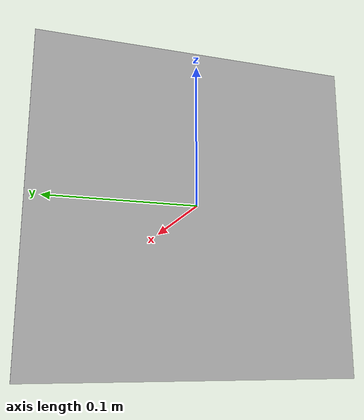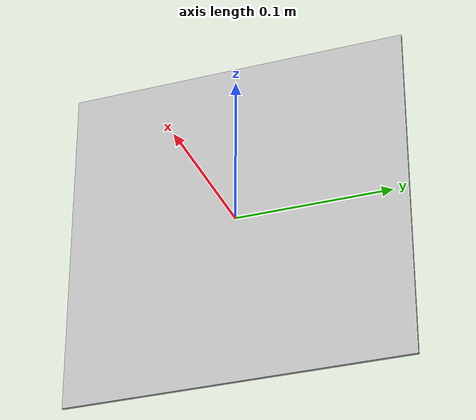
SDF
<?xml version="1.0"?>
<sdf version="1.7">
  <model name="aruco_marker_30">
    <static>true</static>
    <link name="marker_link">
      <pose>0 0 0 0 0 0</pose>
      <visual name="marker_visual">
        <pose>0 0 0 0 0 0</pose>
        <geometry>
          <box><size>0.002 0.22 0.22</size></box>
        </geometry>
        <material>
          <script>
            <uri>model://aruco_marker_30/materials/scripts/</uri>
            <uri>model://aruco_marker_30/materials/textures/</uri>
            <name>ArUcoMarker_30</name>
          </script>
        </material>
      </visual>
      <collision name="marker_collision">
        <geometry>
          <box><size>0.002 0.22 0.22</size></box>
        </geometry>
      </collision>
    </link>
  </model>
</sdf>
